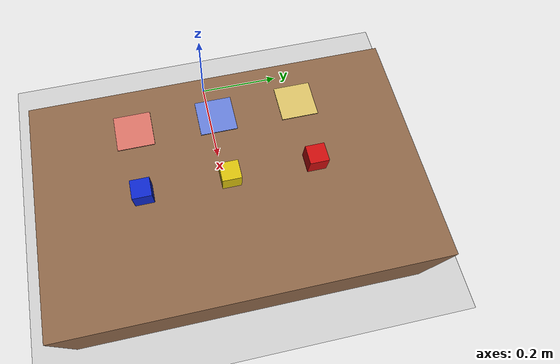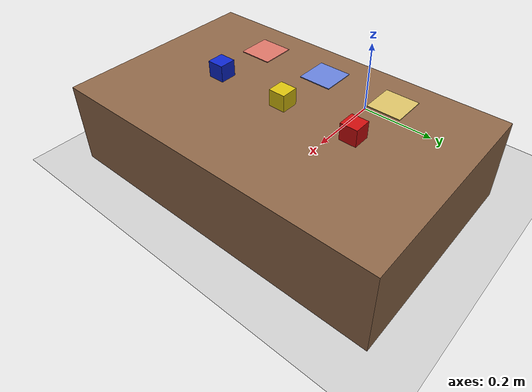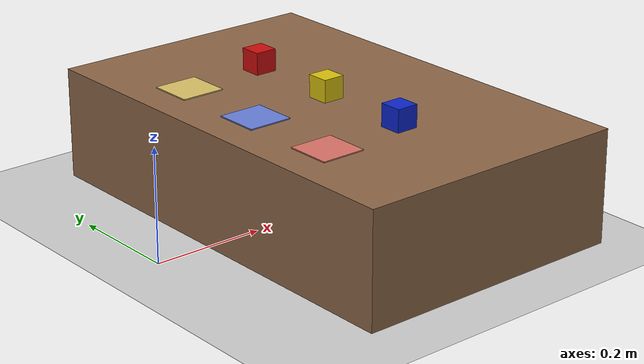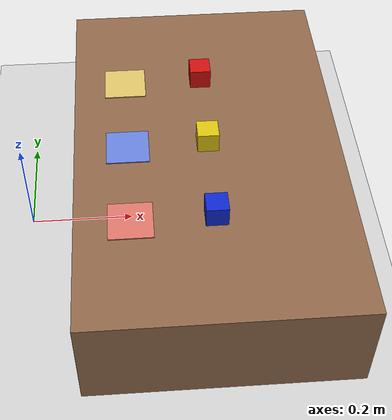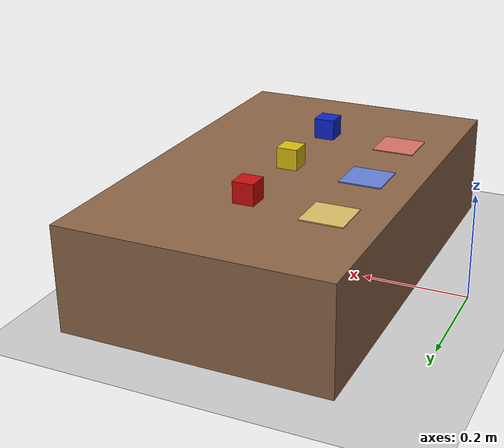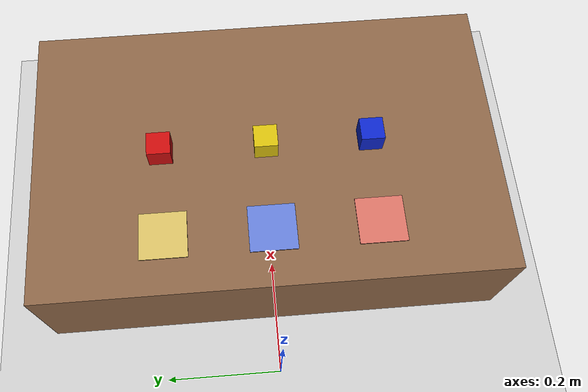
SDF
<?xml version="1.0" ?>
<sdf version="1.6">
  <world name="tabletop">
    <physics name="1ms" type="ignored">
      <max_step_size>0.001</max_step_size>
      <real_time_factor>1.0</real_time_factor>
    </physics>
    <plugin
      filename="ignition-gazebo-physics-system"
      name="gz::sim::systems::Physics">
    </plugin>
    <plugin
      filename="ignition-gazebo-user-commands-system"
      name="gz::sim::systems::UserCommands">
    </plugin>
    <plugin
      filename="ignition-gazebo-scene-broadcaster-system"
      name="gz::sim::systems::SceneBroadcaster">
    </plugin>
    <plugin
      filename="ignition-gazebo-contact-system"
      name="gz::sim::systems::Contact">
    </plugin>

    <light type="directional" name="sun">
      <cast_shadows>true</cast_shadows>
      <pose>0 0 10 0 0 0</pose>
      <diffuse>0.8 0.8 0.8 1</diffuse>
      <specular>0.2 0.2 0.2 1</specular>
      <attenuation>
        <range>1000</range>
        <constant>0.9</constant>
        <linear>0.01</linear>
        <quadratic>0.001</quadratic>
      </attenuation>
      <direction>-0.5 0.1 -0.9</direction>
    </light>

    <model name="ground_plane">
      <static>true</static>
      <link name="link">
        <collision name="collision">
          <geometry>
            <plane>
              <normal>0 0 1</normal>
              <size>100 100</size>
            </plane>
          </geometry>
        </collision>
        <visual name="visual">
          <geometry>
            <plane>
              <normal>0 0 1</normal>
              <size>100 100</size>
            </plane>
          </geometry>
          <material>
            <ambient>0.8 0.8 0.8 1</ambient>
            <diffuse>0.8 0.8 0.8 1</diffuse>
            <specular>0.8 0.8 0.8 1</specular>
          </material>
        </visual>
      </link>
    </model>

    <!-- Work table: top surface at z = 0.20 m, within the UR3's reach -->
    <model name="table">
      <static>true</static>
      <pose>0.35 0 0.10 0 0 0</pose>
      <link name="link">
        <collision name="collision">
          <geometry>
            <box><size>0.5 0.8 0.20</size></box>
          </geometry>
        </collision>
        <visual name="visual">
          <geometry>
            <box><size>0.5 0.8 0.20</size></box>
          </geometry>
          <material>
            <ambient>0.55 0.4 0.28 1</ambient>
            <diffuse>0.55 0.4 0.28 1</diffuse>
          </material>
        </visual>
      </link>
    </model>

    <!-- Objects: red_cube / yellow_cube / blue_cube, 4 cm cubes resting on the table -->
    <model name="red_cube">
      <static>true</static>
      <pose>0.35 0.18 0.22 0 0 0</pose>
      <link name="link">
        <collision name="collision">
          <geometry><box><size>0.04 0.04 0.04</size></box></geometry>
        </collision>
        <visual name="visual">
          <geometry><box><size>0.04 0.04 0.04</size></box></geometry>
          <material>
            <ambient>0.8 0.05 0.05 1</ambient>
            <diffuse>0.8 0.05 0.05 1</diffuse>
          </material>
        </visual>
      </link>
    </model>

    <model name="yellow_cube">
      <static>true</static>
      <pose>0.35 0.0 0.22 0 0 0</pose>
      <link name="link">
        <collision name="collision">
          <geometry><box><size>0.04 0.04 0.04</size></box></geometry>
        </collision>
        <visual name="visual">
          <geometry><box><size>0.04 0.04 0.04</size></box></geometry>
          <material>
            <ambient>0.85 0.75 0.05 1</ambient>
            <diffuse>0.85 0.75 0.05 1</diffuse>
          </material>
        </visual>
      </link>
    </model>

    <model name="blue_cube">
      <static>true</static>
      <pose>0.35 -0.18 0.22 0 0 0</pose>
      <link name="link">
        <collision name="collision">
          <geometry><box><size>0.04 0.04 0.04</size></box></geometry>
        </collision>
        <visual name="visual">
          <geometry><box><size>0.04 0.04 0.04</size></box></geometry>
          <material>
            <ambient>0.05 0.15 0.8 1</ambient>
            <diffuse>0.05 0.15 0.8 1</diffuse>
          </material>
        </visual>
      </link>
    </model>

    <model name="zone_a_marker">
      <static>true</static>
      <pose>0.20 0.18 0.201 0 0 0</pose>
      <link name="link">
        <visual name="visual">
          <geometry><box><size>0.08 0.08 0.002</size></box></geometry>
          <material>
            <ambient>0.85 0.75 0.4 1</ambient>
            <diffuse>0.85 0.75 0.4 1</diffuse>
          </material>
        </visual>
      </link>
    </model>

    <model name="zone_b_marker">
      <static>true</static>
      <pose>0.20 0.0 0.201 0 0 0</pose>
      <link name="link">
        <visual name="visual">
          <geometry><box><size>0.08 0.08 0.002</size></box></geometry>
          <material>
            <ambient>0.4 0.5 0.85 1</ambient>
            <diffuse>0.4 0.5 0.85 1</diffuse>
          </material>
        </visual>
      </link>
    </model>

    <model name="zone_c_marker">
      <static>true</static>
      <pose>0.20 -0.18 0.201 0 0 0</pose>
      <link name="link">
        <visual name="visual">
          <geometry><box><size>0.08 0.08 0.002</size></box></geometry>
          <material>
            <ambient>0.85 0.45 0.4 1</ambient>
            <diffuse>0.85 0.45 0.4 1</diffuse>
          </material>
        </visual>
      </link>
    </model>

  </world>
</sdf>
